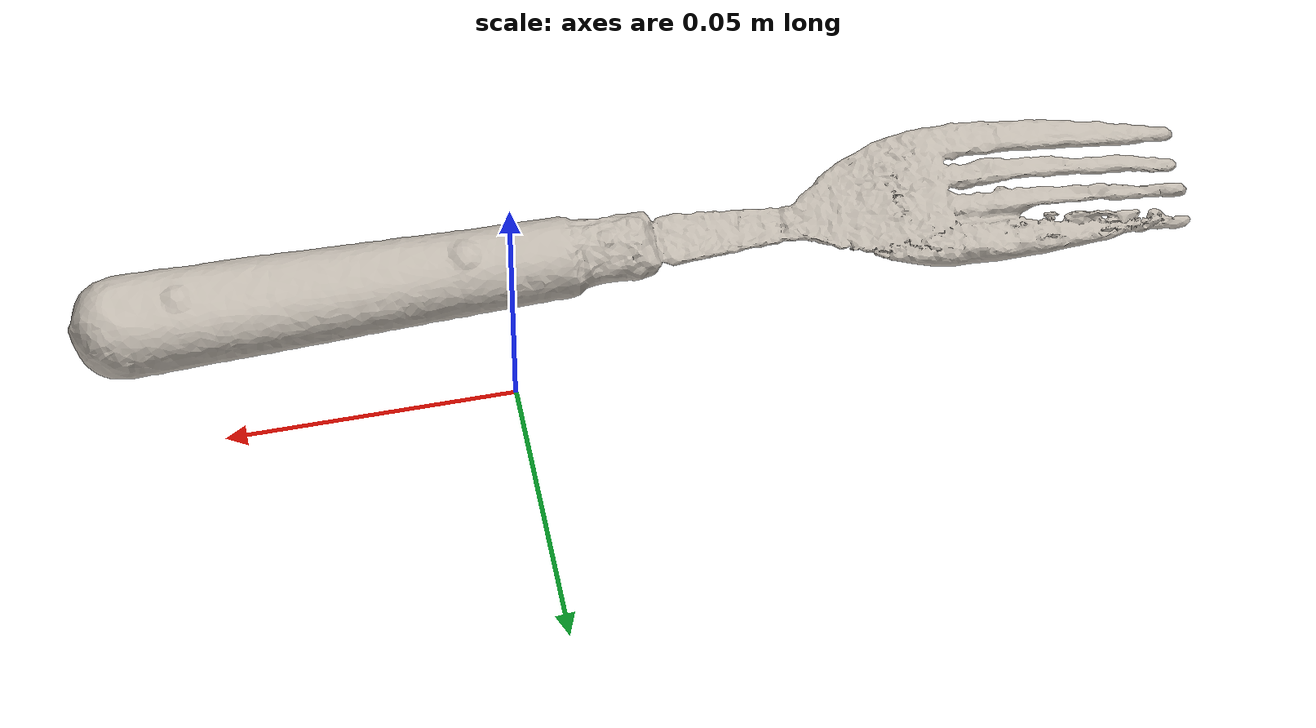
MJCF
<mujoco model="fork">
  <compiler angle="radian" meshdir="assets" texturedir="assets"/>
    <default>
        <default class="ycb_col">
            <geom contype="1" conaffinity="1" group="3" rgba=".4 .5 .6 1"/>
        </default>
        <default class="ycb_viz">
            <geom contype="0" conaffinity="0" type="mesh" mass="0"/>
        </default>
    </default>
  <asset>
    <texture type="2d" name="fork_tex" file="texture_map.png"/>
    <material name="fork_mat" texture="fork_tex" specular="0.5" shininess="0.5"/>
    <mesh file="textured.obj" name="fork"/>
    <mesh file="textured_collision_0.obj" name="fork_collision_0"/>
    <mesh file="textured_collision_1.obj" name="fork_collision_1"/>
    <mesh file="textured_collision_2.obj" name="fork_collision_2"/>
    <mesh file="textured_collision_3.obj" name="fork_collision_3"/>
    <mesh file="textured_collision_4.obj" name="fork_collision_4"/>
    <mesh file="textured_collision_5.obj" name="fork_collision_5"/>
    <mesh file="textured_collision_6.obj" name="fork_collision_6"/>
    <mesh file="textured_collision_7.obj" name="fork_collision_7"/>
    <mesh file="textured_collision_8.obj" name="fork_collision_8"/>
    <mesh file="textured_collision_9.obj" name="fork_collision_9"/>
    <mesh file="textured_collision_10.obj" name="fork_collision_10"/>
    <mesh file="textured_collision_11.obj" name="fork_collision_11"/>
    <mesh file="textured_collision_12.obj" name="fork_collision_12"/>
    <mesh file="textured_collision_13.obj" name="fork_collision_13"/>
    <mesh file="textured_collision_14.obj" name="fork_collision_14"/>
    <mesh file="textured_collision_15.obj" name="fork_collision_15"/>
  </asset>
  <worldbody>
      <geom class="ycb_viz" material="fork_mat" mesh="fork"/>
      <geom mesh="fork_collision_0" class="ycb_col" conaffinity="1" condim="4" friction="0.1 0.1 0.1" mass="0.0006853114500958915" rgba="1 1 1 1" solimp="0.99 0.99 0.01" solref=".001 0.1" type="mesh" group="3"/>
      <geom mesh="fork_collision_1" class="ycb_col" conaffinity="1" condim="4" friction="0.1 0.1 0.1" mass="0.014865604563075493" rgba="1 1 1 1" solimp="0.99 0.99 0.01" solref=".001 0.1" type="mesh" group="3"/>
      <geom mesh="fork_collision_2" class="ycb_col" conaffinity="1" condim="4" friction="0.1 0.1 0.1" mass="0.011437877433924949" rgba="1 1 1 1" solimp="0.99 0.99 0.01" solref=".001 0.1" type="mesh" group="3"/>
      <geom mesh="fork_collision_3" class="ycb_col" conaffinity="1" condim="4" friction="0.1 0.1 0.1" mass="0.000928416970565549" rgba="1 1 1 1" solimp="0.99 0.99 0.01" solref=".001 0.1" type="mesh" group="3"/>
      <geom mesh="fork_collision_4" class="ycb_col" conaffinity="1" condim="4" friction="0.1 0.1 0.1" mass="0.0004963726178131021" rgba="1 1 1 1" solimp="0.99 0.99 0.01" solref=".001 0.1" type="mesh" group="3"/>
      <geom mesh="fork_collision_5" class="ycb_col" conaffinity="1" condim="4" friction="0.1 0.1 0.1" mass="0.0020368389276220066" rgba="1 1 1 1" solimp="0.99 0.99 0.01" solref=".001 0.1" type="mesh" group="3"/>
      <geom mesh="fork_collision_6" class="ycb_col" conaffinity="1" condim="4" friction="0.1 0.1 0.1" mass="0.00039299306314202526" rgba="1 1 1 1" solimp="0.99 0.99 0.01" solref=".001 0.1" type="mesh" group="3"/>
      <geom mesh="fork_collision_7" class="ycb_col" conaffinity="1" condim="4" friction="0.1 0.1 0.1" mass="0.0003038718785725383" rgba="1 1 1 1" solimp="0.99 0.99 0.01" solref=".001 0.1" type="mesh" group="3"/>
      <geom mesh="fork_collision_8" class="ycb_col" conaffinity="1" condim="4" friction="0.1 0.1 0.1" mass="0.0005374126269381453" rgba="1 1 1 1" solimp="0.99 0.99 0.01" solref=".001 0.1" type="mesh" group="3"/>
      <geom mesh="fork_collision_9" class="ycb_col" conaffinity="1" condim="4" friction="0.1 0.1 0.1" mass="0.00010562936926036965" rgba="1 1 1 1" solimp="0.99 0.99 0.01" solref=".001 0.1" type="mesh" group="3"/>
      <geom mesh="fork_collision_10" class="ycb_col" conaffinity="1" condim="4" friction="0.1 0.1 0.1" mass="0.00013108950311562233" rgba="1 1 1 1" solimp="0.99 0.99 0.01" solref=".001 0.1" type="mesh" group="3"/>
      <geom mesh="fork_collision_11" class="ycb_col" conaffinity="1" condim="4" friction="0.1 0.1 0.1" mass="0.0012999733536684884" rgba="1 1 1 1" solimp="0.99 0.99 0.01" solref=".001 0.1" type="mesh" group="3"/>
      <geom mesh="fork_collision_12" class="ycb_col" conaffinity="1" condim="4" friction="0.1 0.1 0.1" mass="0.00023834629244257207" rgba="1 1 1 1" solimp="0.99 0.99 0.01" solref=".001 0.1" type="mesh" group="3"/>
      <geom mesh="fork_collision_13" class="ycb_col" conaffinity="1" condim="4" friction="0.1 0.1 0.1" mass="9.861319998645661e-05" rgba="1 1 1 1" solimp="0.99 0.99 0.01" solref=".001 0.1" type="mesh" group="3"/>
      <geom mesh="fork_collision_14" class="ycb_col" conaffinity="1" condim="4" friction="0.1 0.1 0.1" mass="0.0002141723413854262" rgba="1 1 1 1" solimp="0.99 0.99 0.01" solref=".001 0.1" type="mesh" group="3"/>
      <geom mesh="fork_collision_15" class="ycb_col" conaffinity="1" condim="4" friction="0.1 0.1 0.1" mass="0.000227476408391368" rgba="1 1 1 1" solimp="0.99 0.99 0.01" solref=".001 0.1" type="mesh" group="3"/>
  </worldbody>
</mujoco>
